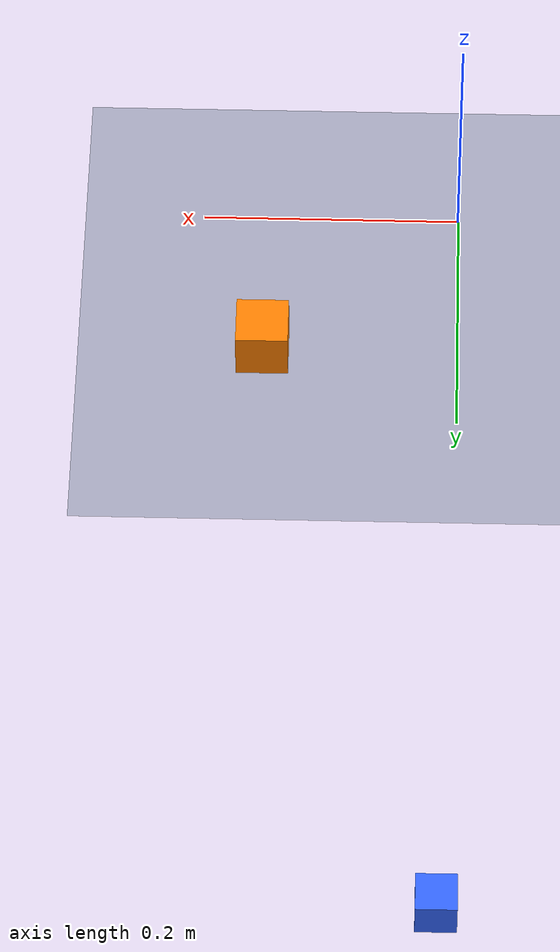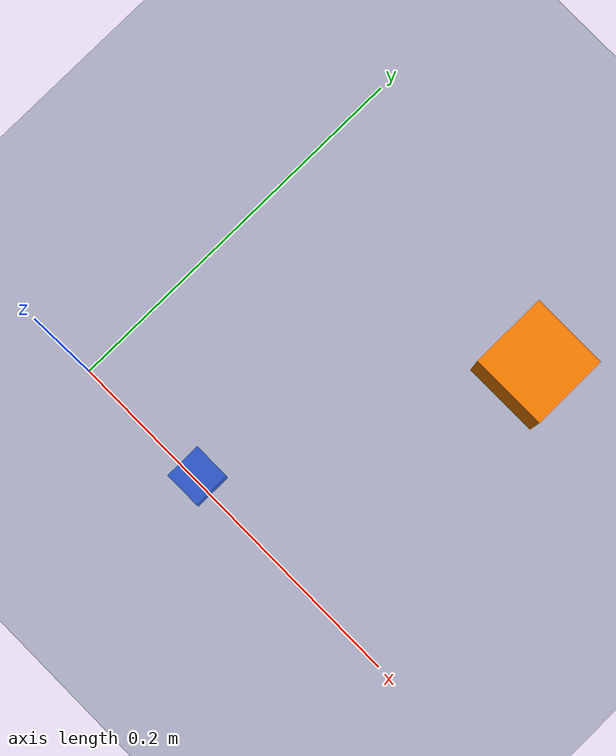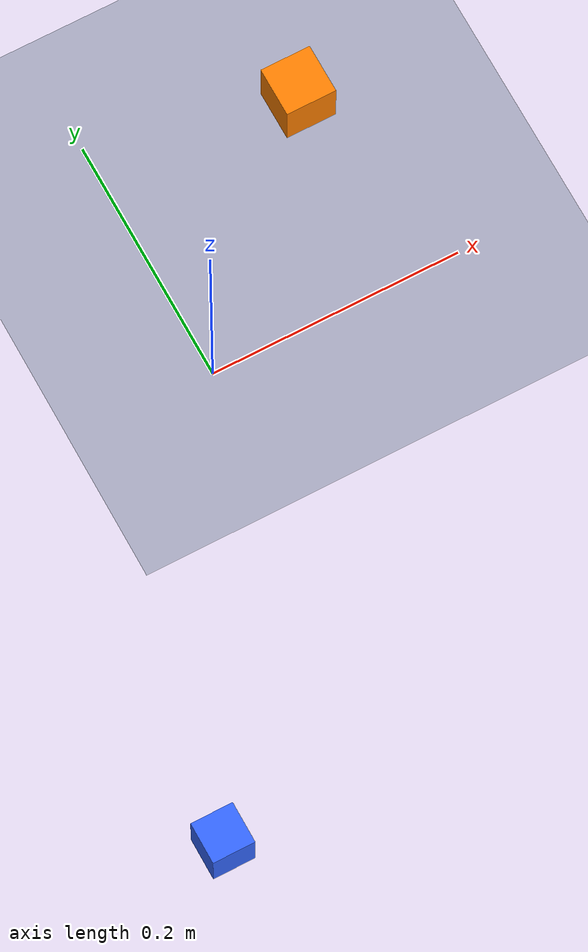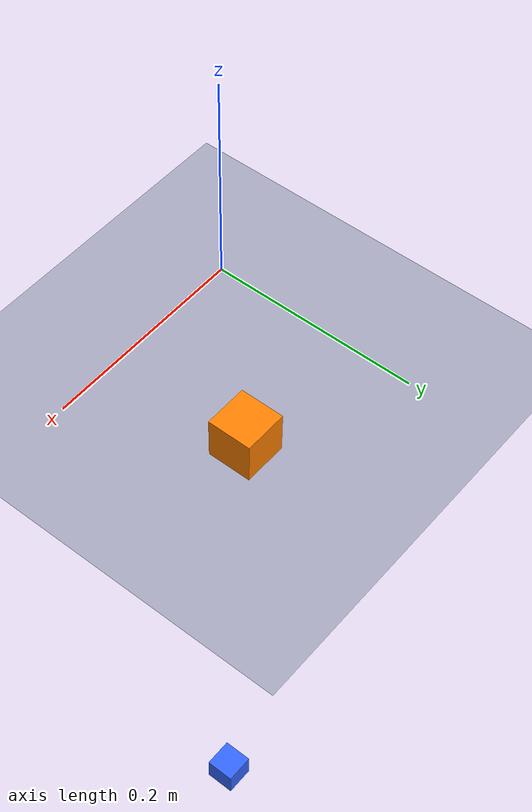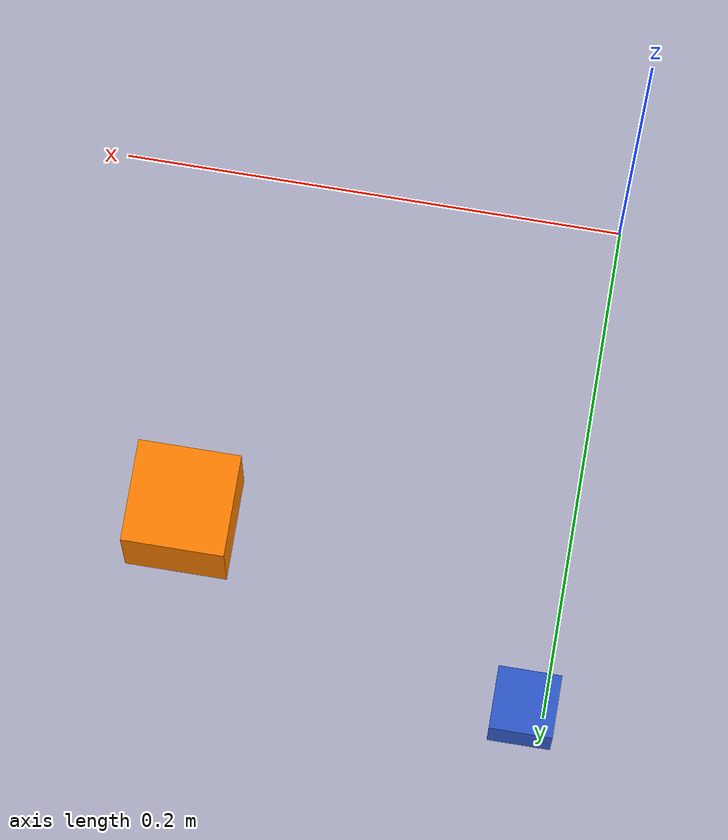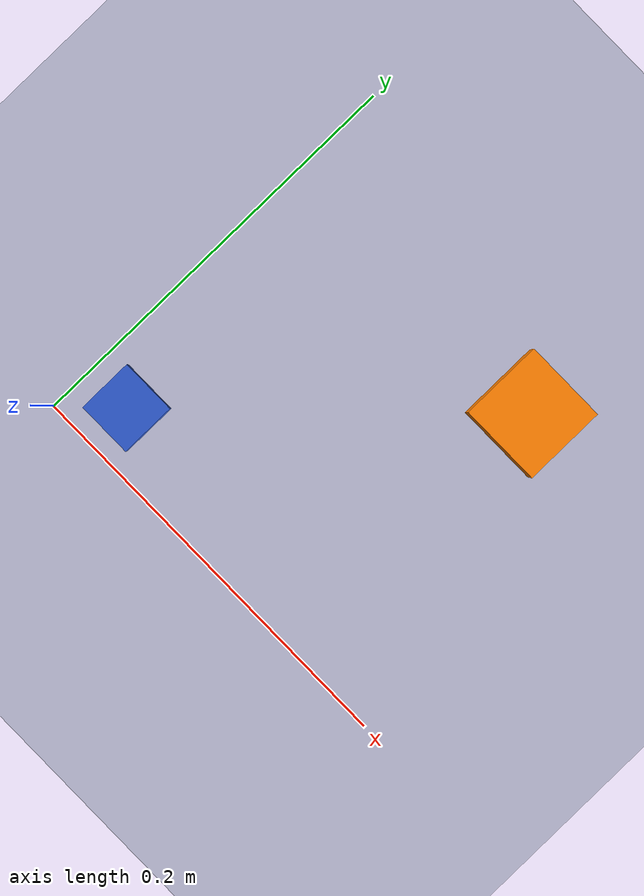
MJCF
<?xml version='1.0' encoding='utf-8'?>
<mujoco model="tabletop">
  <statistic extent="1" center="0 0 0.4" />
  <visual>
    <headlight ambient=".4 .4 .4" diffuse=".8 .8 .8" specular="0.1 0.1 0.1" />
    <map znear="0.005" />
    <quality shadowsize="2048" />
  </visual>
  <asset>
    <texture type="skybox" builtin="gradient" rgb1="0.3 0.5 0.7" rgb2="0 0 0" width="512" height="3072" />
    <texture type="2d" name="groundplane" builtin="checker" mark="edge" rgb1="0.2 0.3 0.4" rgb2="0.1 0.2 0.3" markrgb="0.8 0.8 0.8" width="300" height="300" />
    <material name="groundplane" texture="groundplane" texuniform="true" texrepeat="5 5" reflectance="0.2" />
    <material name="table_top" rgba="0.85 0.75 0.6 1.0" />
  </asset>
  <worldbody>
    <light directional="true" diffuse=".8 .8 .8" pos="0 0 3" dir="0 0 -1" />
    <geom name="floor" type="plane" size="3 3 0.1" material="groundplane" />

    <!-- Table: 60x60cm surface at height 0 (arm base sits on this) -->
    <!-- The table top is the ground plane for the arm — arm base_type="fixed"
         places the root body at z=body_height/2, sitting on the floor geom. -->

    <!-- Manipulation target -->
    <body name="target" mocap="true" pos="0.15 0.15 0.04">
      <geom name="target_cube" type="box" size="0.02 0.02 0.02" rgba="1.0 0.5 0.0 1.0" contype="0" conaffinity="0" />
    </body>
    <body name="distractor_0" mocap="true" pos="0 0 -1">
      <geom name="distractor_0_cube" type="box" size="0.02 0.02 0.02" rgba="0.2 0.4 1.0 1.0" contype="0" conaffinity="0" />
    </body>
    <body name="distractor_1" mocap="true" pos="0 0 -1">
      <geom name="distractor_1_cube" type="box" size="0.02 0.02 0.02" rgba="0.2 0.9 0.3 1.0" contype="0" conaffinity="0" />
    </body>
    <body name="distractor_2" mocap="true" pos="0 0 -1">
      <geom name="distractor_2_cube" type="box" size="0.02 0.02 0.02" rgba="0.9 0.2 0.2 1.0" contype="0" conaffinity="0" />
    </body>
    <body name="distractor_3" mocap="true" pos="0 0 -1">
      <geom name="distractor_3_cube" type="box" size="0.02 0.02 0.02" rgba="0.7 0.3 0.9 1.0" contype="0" conaffinity="0" />
    </body>
  </worldbody>
</mujoco>
